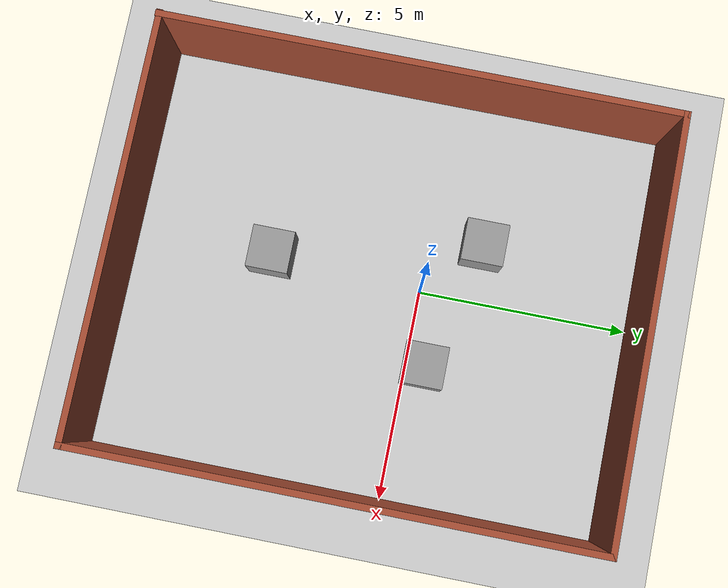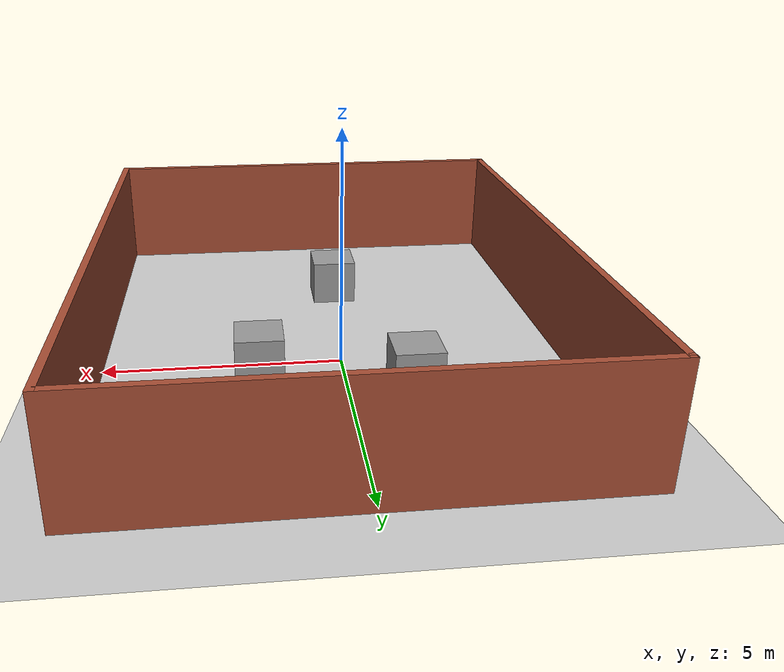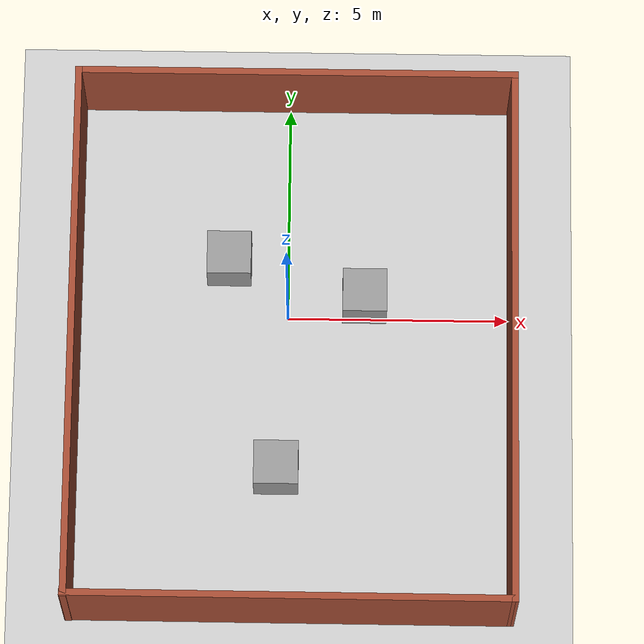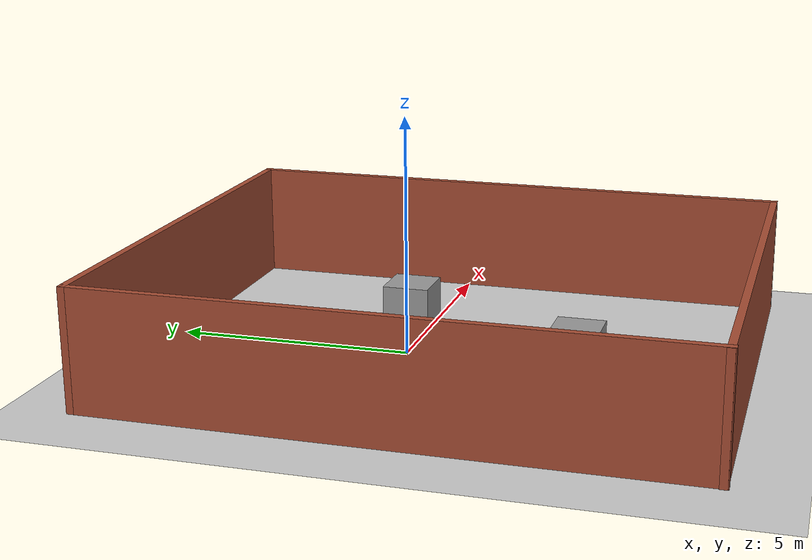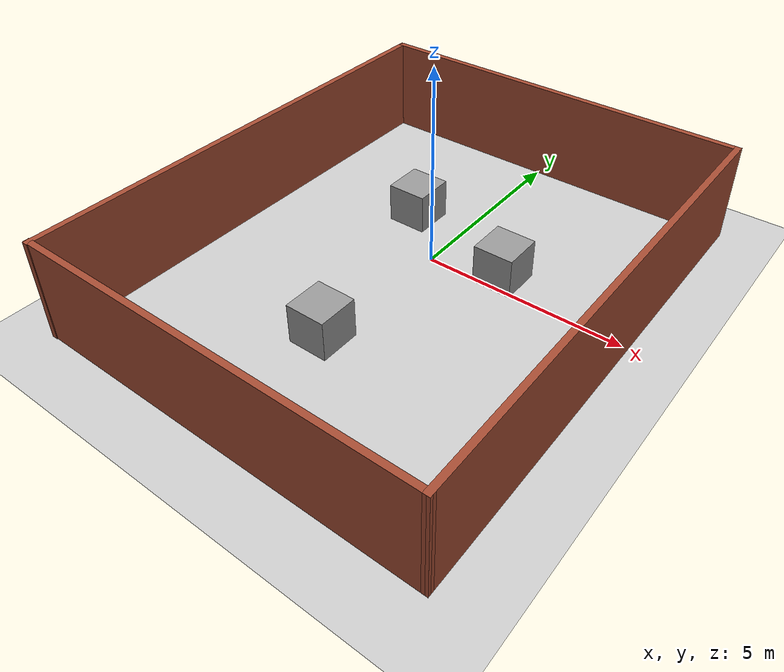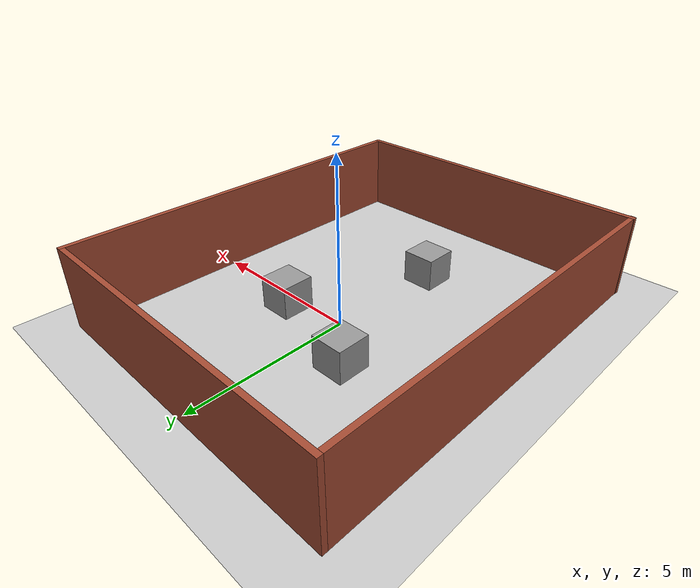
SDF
<sdf version="1.6">
 <world name="default">
  <light name="sun" type="directional">
   <pose>0 0 10 0 -0 0</pose>
   <diffuse>0.8 0.8 0.8 1</diffuse>
   <specular>0.1 0.1 0.1 1</specular>
   <attenuation>
    <range>1000</range>
    <constant>0.9</constant>
    <linear>0.01</linear>
    <quadratic>0.001</quadratic>
   </attenuation>
   <direction>-0.5 0.5 -1</direction>
  </light>
  <model name="ground_plane">
   <static>1</static>
   <link name="link">
    <collision name="collision">
     <geometry><plane><normal>0 0 1</normal><size>100 100</size></plane></geometry>
     <surface><friction><ode><mu>100</mu><mu2>50</mu2></ode></friction></surface>
    </collision>
    <visual name="visual">
     <cast_shadows>0</cast_shadows>
     <geometry><plane><normal>0 0 1</normal><size>100 100</size></plane></geometry>
     <material>
      <script><uri>file://media/materials/scripts/gazebo.material</uri><name>Gazebo/Grey</name></script>
     </material>
    </visual>
   </link>
  </model>
  <gravity>0 0 -9.8</gravity>
  <magnetic_field>6e-06 2.3e-05 -4.2e-05</magnetic_field>
  <atmosphere type="adiabatic"/>
  <physics name="default_physics" default="0" type="ode">
   <max_step_size>0.001</max_step_size>
   <real_time_factor>1</real_time_factor>
   <real_time_update_rate>1000</real_time_update_rate>
  </physics>
  <scene><ambient>0.4 0.4 0.4 1</ambient><background>0.7 0.7 0.7 1</background><shadows>1</shadows></scene>
  <spherical_coordinates>
   <surface_model>EARTH_WGS84</surface_model>
   <latitude_deg>0</latitude_deg>
   <longitude_deg>0</longitude_deg>
   <elevation>0</elevation>
   <heading_deg>0</heading_deg>
  </spherical_coordinates>
  <model name="Square">
   <pose>0.130303 -0.967266 0 0 -0 0</pose>
   <link name="Wall_0">
    <collision name="Wall_0_Collision">
     <geometry><box><size>10 0.15 2.5</size></box></geometry>
     <pose>0 0 1.25 0 -0 0</pose>
    </collision>
    <visual name="Wall_0_Visual">
     <pose>0 0 1.25 0 -0 0</pose>
     <geometry><box><size>10 0.15 2.5</size></box></geometry>
     <material>
      <script><uri>file://media/materials/scripts/gazebo.material</uri><name>Gazebo/Bricks</name></script>
      <ambient>1 1 1 1</ambient>
     </material>
    </visual>
    <pose>0.008799 6.05007 0 0 -0 0</pose>
   </link>
   <link name="Wall_17">
    <collision name="Wall_17_Collision">
     <geometry><box><size>12.25 0.15 2.5</size></box></geometry>
     <pose>0 0 1.25 0 -0 0</pose>
    </collision>
    <visual name="Wall_17_Visual">
     <pose>0 0 1.25 0 -0 0</pose>
     <geometry><box><size>12.25 0.15 2.5</size></box></geometry>
     <material>
      <script><uri>file://media/materials/scripts/gazebo.material</uri><name>Gazebo/Bricks</name></script>
      <ambient>1 1 1 1</ambient>
     </material>
    </visual>
    <pose>-4.9162 6.6e-05 0 0 0 -1.5708</pose>
   </link>
   <link name="Wall_2">
    <collision name="Wall_2_Collision">
     <geometry><box><size>12.25 0.15 2.5</size></box></geometry>
     <pose>0 0 1.25 0 -0 0</pose>
    </collision>
    <visual name="Wall_2_Visual">
     <pose>0 0 1.25 0 -0 0</pose>
     <geometry><box><size>12.25 0.15 2.5</size></box></geometry>
     <material>
      <script><uri>file://media/materials/scripts/gazebo.material</uri><name>Gazebo/Bricks</name></script>
      <ambient>1 1 1 1</ambient>
     </material>
    </visual>
    <pose>4.9338 6.6e-05 0 0 0 -1.5708</pose>
   </link>
   <link name="Wall_3">
    <collision name="Wall_3_Collision">
     <geometry><box><size>10.0176 0.15 2.5</size></box></geometry>
     <pose>0 0 1.25 0 -0 0</pose>
    </collision>
    <visual name="Wall_3_Visual">
     <pose>0 0 1.25 0 -0 0</pose>
     <geometry><box><size>10.0176 0.15 2.5</size></box></geometry>
     <material>
      <script><uri>file://media/materials/scripts/gazebo.material</uri><name>Gazebo/Bricks</name></script>
      <ambient>1 1 1 1</ambient>
     </material>
    </visual>
    <pose>0 -6.04113 0 0 -0 3.13981</pose>
   </link>
   <static>1</static>
  </model>
  <model name="unit_box_0">
   <pose>1.74057 0.425059 0.499995 0 1e-05 0</pose>
   <link name="link">
    <inertial>
     <mass>1</mass>
     <inertia>
      <ixx>0.166667</ixx>
      <ixy>0</ixy>
      <ixz>0</ixz>
      <iyy>0.166667</iyy>
      <iyz>0</iyz>
      <izz>0.166667</izz>
     </inertia>
    </inertial>
    <collision name="collision"><geometry><box><size>1 1 1</size></box></geometry></collision>
    <visual name="visual">
     <geometry><box><size>1 1 1</size></box></geometry>
     <material>
      <script><name>Gazebo/Grey</name><uri>file://media/materials/scripts/gazebo.material</uri></script>
     </material>
    </visual>
   </link>
  </model>
  <model name="unit_box_1">
   <pose>-0.2127 -3.62191 0.499995 -1e-05 0 0</pose>
   <link name="link">
    <inertial>
     <mass>1</mass>
     <inertia>
      <ixx>0.166667</ixx>
      <ixy>0</ixy>
      <ixz>0</ixz>
      <iyy>0.166667</iyy>
      <iyz>0</iyz>
      <izz>0.166667</izz>
     </inertia>
    </inertial>
    <collision name="collision"><geometry><box><size>1 1 1</size></box></geometry></collision>
    <visual name="visual">
     <geometry><box><size>1 1 1</size></box></geometry>
     <material>
      <script><name>Gazebo/Grey</name><uri>file://media/materials/scripts/gazebo.material</uri></script>
     </material>
    </visual>
   </link>
  </model>
  <model name="unit_box_2">
   <pose>-1.34697 1.27918 0.5 0 -0 0</pose>
   <link name="link">
    <inertial>
     <mass>1</mass>
     <inertia>
      <ixx>0.166667</ixx>
      <ixy>0</ixy>
      <ixz>0</ixz>
      <iyy>0.166667</iyy>
      <iyz>0</iyz>
      <izz>0.166667</izz>
     </inertia>
    </inertial>
    <collision name="collision"><geometry><box><size>1 1 1</size></box></geometry></collision>
    <visual name="visual">
     <geometry><box><size>1 1 1</size></box></geometry>
     <material>
      <script><name>Gazebo/Grey</name><uri>file://media/materials/scripts/gazebo.material</uri></script>
     </material>
    </visual>
   </link>
  </model>
 </world>
</sdf>
